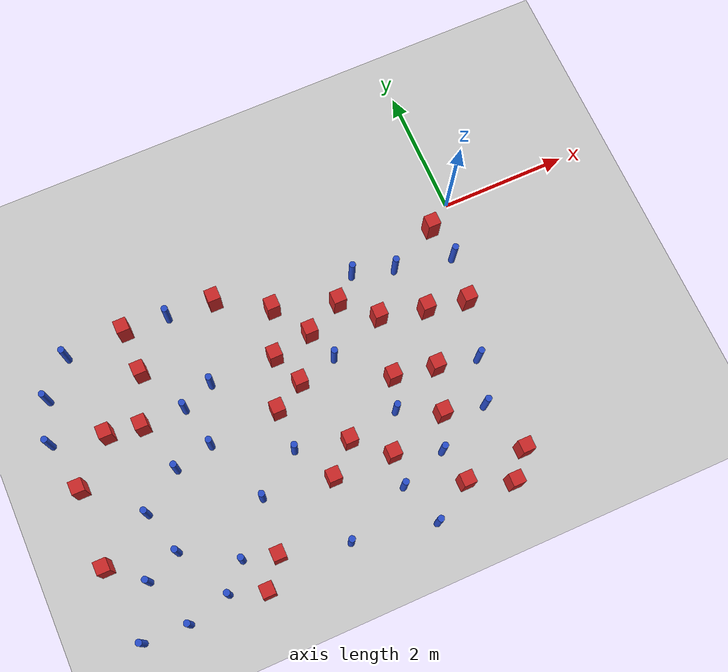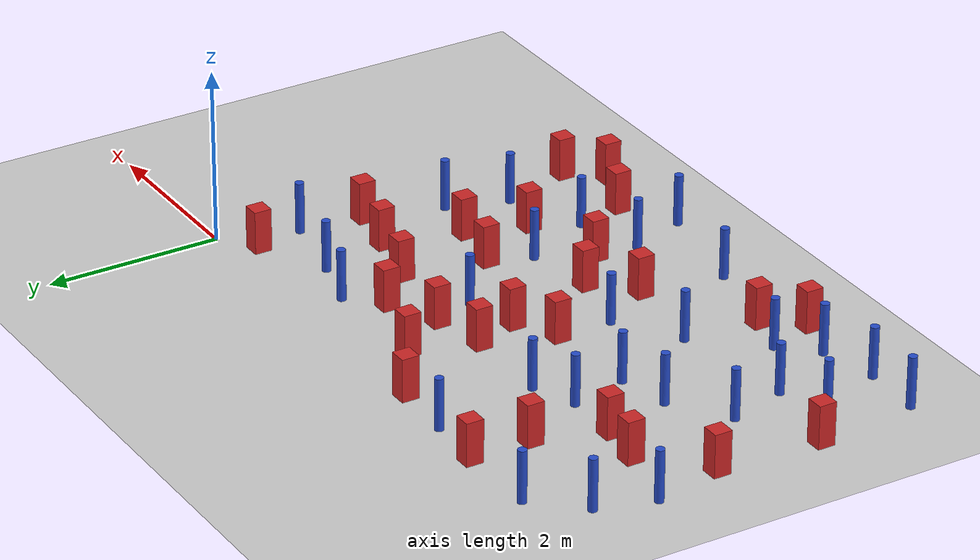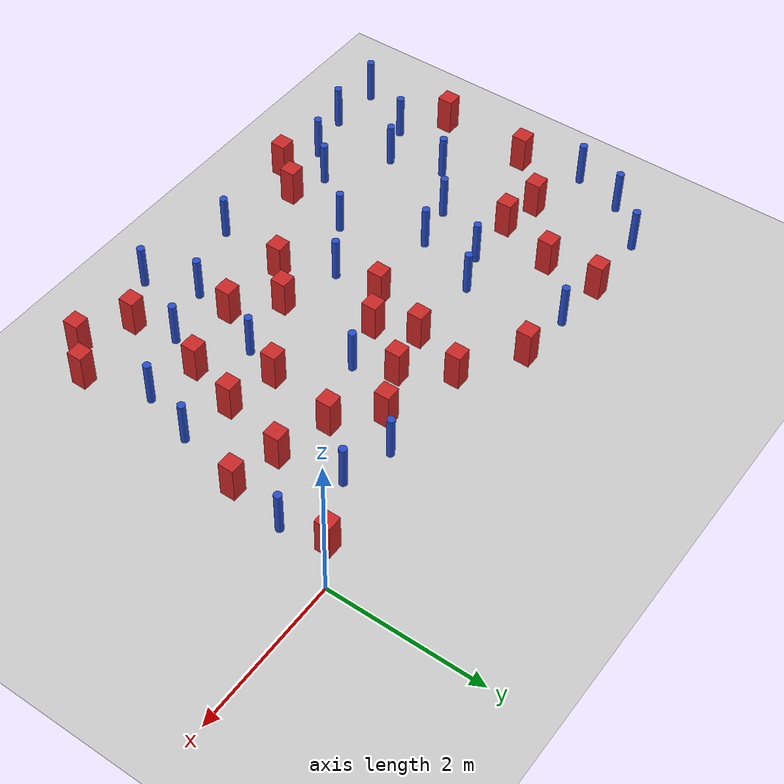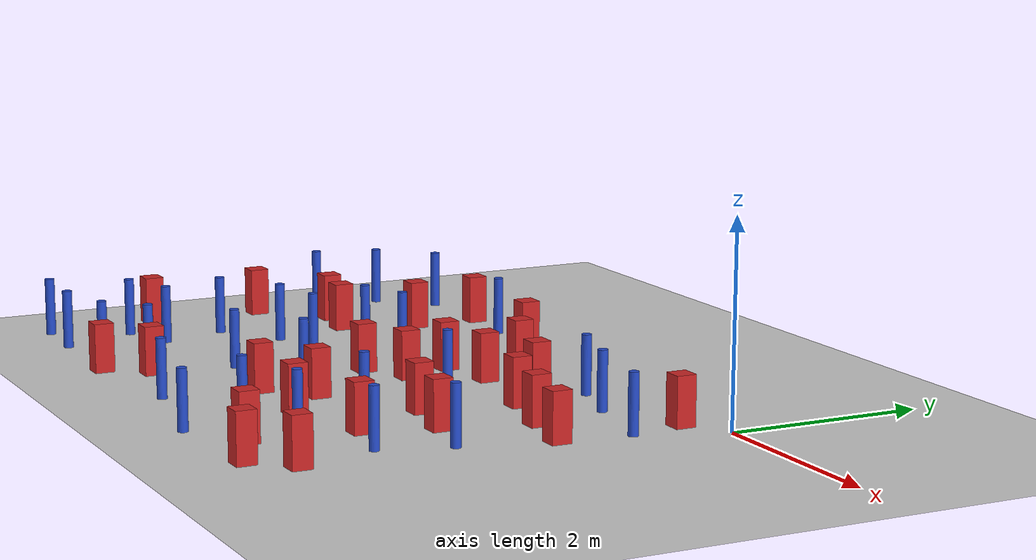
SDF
<sdf version="1.6">
 <world name="default">
  <model name="ground_plane">
   <static>1</static>
   <link name="link">
    <collision name="collision">
     <geometry><plane><normal>0 0 1</normal><size>100 100</size></plane></geometry>
     <surface><friction><ode><mu>100</mu><mu2>50</mu2></ode></friction></surface>
    </collision>
    <visual name="visual">
     <cast_shadows>0</cast_shadows>
     <geometry><plane><normal>0 0 1</normal><size>100 100</size></plane></geometry>
     <material>
      <ambient>1.0 1.0 1.0 1.0</ambient>
      <diffuse>0.8 0.8 0.8 1.0</diffuse>
      <specular>0.01 0.01 0.01 1.000000</specular>
     </material>
    </visual>
   </link>
  </model>
  <model name="square_post_obstacle12">
   <static>true</static>
   <pose>-3.24968776306 -1.7492134352 1.91545236811e-07 -7.35059704564e-06 1.12565212e-07 2.39332434364e-05</pose>
   <link name="link">
    <pose>0 0 0.25 0 -0 0</pose>
    <inertial>
     <mass>100</mass>
     <inertia>
      <ixx>0.166667</ixx>
      <ixy>0</ixy>
      <ixz>0</ixz>
      <iyy>0.166667</iyy>
      <iyz>0</iyz>
      <izz>0.166667</izz>
     </inertia>
    </inertial>
    <collision name="collision"><geometry><box><size>.2 .2 .5</size></box></geometry></collision>
    <visual name="visual">
     <geometry><box><size>.2 .2 .5</size></box></geometry>
     <material>
      <script><name>Gazebo/Red</name><uri>file://media/materials/scripts/gazebo.material</uri></script>
     </material>
    </visual>
   </link>
  </model>
  <model name="square_post_obstacle21">
   <static>true</static>
   <pose>-2.22867674971 -0.830069548828 1.91545236811e-07 -7.35059704564e-06 1.12565212e-07 2.39332434364e-05</pose>
   <link name="link">
    <pose>0 0 0.25 0 -0 0</pose>
    <inertial>
     <mass>100</mass>
     <inertia>
      <ixx>0.166667</ixx>
      <ixy>0</ixy>
      <ixz>0</ixz>
      <iyy>0.166667</iyy>
      <iyz>0</iyz>
      <izz>0.166667</izz>
     </inertia>
    </inertial>
    <collision name="collision"><geometry><box><size>.2 .2 .5</size></box></geometry></collision>
    <visual name="visual">
     <geometry><box><size>.2 .2 .5</size></box></geometry>
     <material>
      <script><name>Gazebo/Red</name><uri>file://media/materials/scripts/gazebo.material</uri></script>
     </material>
    </visual>
   </link>
  </model>
  <model name="pole_obstacle16">
   <static>true</static>
   <pose>-2.48492322059 -3.77934961691 7.38925637345e-09 -8.47170692798e-08 1.24976764939e-08 -1.74513093025e-07</pose>
   <link name="link">
    <pose>0 0 0.3 0 -0 0</pose>
    <inertial>
     <mass>1</mass>
     <inertia><ixx>0.145833</ixx><ixy>0</ixy><ixz>0</ixz><iyy>0.145833</iyy><iyz>0</iyz><izz>0.125</izz></inertia>
    </inertial>
    <collision name="collision">
     <geometry><cylinder><radius>0.05</radius><length>.6</length></cylinder></geometry>
    </collision>
    <visual name="visual">
     <geometry><cylinder><radius>0.05</radius><length>.6</length></cylinder></geometry>
     <material>
      <script><name>Gazebo/Blue</name><uri>file://media/materials/scripts/gazebo.material</uri></script>
     </material>
    </visual>
   </link>
  </model>
  <model name="square_post_obstacle23">
   <static>true</static>
   <pose>-1.29232454125 -2.33395352667 1.91545236811e-07 -7.35059704564e-06 1.12565212e-07 2.39332434364e-05</pose>
   <link name="link">
    <pose>0 0 0.25 0 -0 0</pose>
    <inertial>
     <mass>100</mass>
     <inertia>
      <ixx>0.166667</ixx>
      <ixy>0</ixy>
      <ixz>0</ixz>
      <iyy>0.166667</iyy>
      <iyz>0</iyz>
      <izz>0.166667</izz>
     </inertia>
    </inertial>
    <collision name="collision"><geometry><box><size>.2 .2 .5</size></box></geometry></collision>
    <visual name="visual">
     <geometry><box><size>.2 .2 .5</size></box></geometry>
     <material>
      <script><name>Gazebo/Red</name><uri>file://media/materials/scripts/gazebo.material</uri></script>
     </material>
    </visual>
   </link>
  </model>
  <model name="square_post_obstacle25">
   <static>true</static>
   <pose>-3.43950755775 -1.2305479218 1.91545236811e-07 -7.35059704564e-06 1.12565212e-07 2.39332434364e-05</pose>
   <link name="link">
    <pose>0 0 0.25 0 -0 0</pose>
    <inertial>
     <mass>100</mass>
     <inertia>
      <ixx>0.166667</ixx>
      <ixy>0</ixy>
      <ixz>0</ixz>
      <iyy>0.166667</iyy>
      <iyz>0</iyz>
      <izz>0.166667</izz>
     </inertia>
    </inertial>
    <collision name="collision"><geometry><box><size>.2 .2 .5</size></box></geometry></collision>
    <visual name="visual">
     <geometry><box><size>.2 .2 .5</size></box></geometry>
     <material>
      <script><name>Gazebo/Red</name><uri>file://media/materials/scripts/gazebo.material</uri></script>
     </material>
    </visual>
   </link>
  </model>
  <model name="square_post_obstacle28">
   <static>true</static>
   <pose>-4.53590641707 -3.95308508538 1.91545236811e-07 -7.35059704564e-06 1.12565212e-07 2.39332434364e-05</pose>
   <link name="link">
    <pose>0 0 0.25 0 -0 0</pose>
    <inertial>
     <mass>100</mass>
     <inertia>
      <ixx>0.166667</ixx>
      <ixy>0</ixy>
      <ixz>0</ixz>
      <iyy>0.166667</iyy>
      <iyz>0</iyz>
      <izz>0.166667</izz>
     </inertia>
    </inertial>
    <collision name="collision"><geometry><box><size>.2 .2 .5</size></box></geometry></collision>
    <visual name="visual">
     <geometry><box><size>.2 .2 .5</size></box></geometry>
     <material>
      <script><name>Gazebo/Red</name><uri>file://media/materials/scripts/gazebo.material</uri></script>
     </material>
    </visual>
   </link>
  </model>
  <model name="square_post_obstacle29">
   <static>true</static>
   <pose>-0.419268702525 -1.57879179032 1.91545236811e-07 -7.35059704564e-06 1.12565212e-07 2.39332434364e-05</pose>
   <link name="link">
    <pose>0 0 0.25 0 -0 0</pose>
    <inertial>
     <mass>100</mass>
     <inertia>
      <ixx>0.166667</ixx>
      <ixy>0</ixy>
      <ixz>0</ixz>
      <iyy>0.166667</iyy>
      <iyz>0</iyz>
      <izz>0.166667</izz>
     </inertia>
    </inertial>
    <collision name="collision"><geometry><box><size>.2 .2 .5</size></box></geometry></collision>
    <visual name="visual">
     <geometry><box><size>.2 .2 .5</size></box></geometry>
     <material>
      <script><name>Gazebo/Red</name><uri>file://media/materials/scripts/gazebo.material</uri></script>
     </material>
    </visual>
   </link>
  </model>
  <model name="pole_obstacle24">
   <static>true</static>
   <pose>-0.882646282621 -3.15868062069 7.38925637345e-09 -8.47170692799e-08 1.2497676509e-08 -1.74513093016e-07</pose>
   <link name="link">
    <pose>0 0 0.3 0 -0 0</pose>
    <inertial>
     <mass>1</mass>
     <inertia><ixx>0.145833</ixx><ixy>0</ixy><ixz>0</ixz><iyy>0.145833</iyy><iyz>0</iyz><izz>0.125</izz></inertia>
    </inertial>
    <collision name="collision">
     <geometry><cylinder><radius>0.05</radius><length>.6</length></cylinder></geometry>
    </collision>
    <visual name="visual">
     <geometry><cylinder><radius>0.05</radius><length>.6</length></cylinder></geometry>
     <material>
      <script><name>Gazebo/Blue</name><uri>file://media/materials/scripts/gazebo.material</uri></script>
     </material>
    </visual>
   </link>
  </model>
  <model name="pole_obstacle27">
   <static>true</static>
   <pose>-3.51186003763 -4.2067492809 7.38925637345e-09 -8.47170692798e-08 1.24976765033e-08 -1.74513093019e-07</pose>
   <link name="link">
    <pose>0 0 0.3 0 -0 0</pose>
    <inertial>
     <mass>1</mass>
     <inertia><ixx>0.145833</ixx><ixy>0</ixy><ixz>0</ixz><iyy>0.145833</iyy><iyz>0</iyz><izz>0.125</izz></inertia>
    </inertial>
    <collision name="collision">
     <geometry><cylinder><radius>0.05</radius><length>.6</length></cylinder></geometry>
    </collision>
    <visual name="visual">
     <geometry><cylinder><radius>0.05</radius><length>.6</length></cylinder></geometry>
     <material>
      <script><name>Gazebo/Blue</name><uri>file://media/materials/scripts/gazebo.material</uri></script>
     </material>
    </visual>
   </link>
  </model>
  <model name="square_post_obstacle32">
   <static>true</static>
   <pose>-1.50820514851 -3.01969444525 1.91545236811e-07 -7.35059704564e-06 1.12565212e-07 2.39332434364e-05</pose>
   <link name="link">
    <pose>0 0 0.25 0 -0 0</pose>
    <inertial>
     <mass>100</mass>
     <inertia>
      <ixx>0.166667</ixx>
      <ixy>0</ixy>
      <ixz>0</ixz>
      <iyy>0.166667</iyy>
      <iyz>0</iyz>
      <izz>0.166667</izz>
     </inertia>
    </inertial>
    <collision name="collision"><geometry><box><size>.2 .2 .5</size></box></geometry></collision>
    <visual name="visual">
     <geometry><box><size>.2 .2 .5</size></box></geometry>
     <material>
      <script><name>Gazebo/Red</name><uri>file://media/materials/scripts/gazebo.material</uri></script>
     </material>
    </visual>
   </link>
  </model>
  <model name="square_post_obstacle36">
   <static>true</static>
   <pose>-5.36356788822 0.0402801164246 1.91545236811e-07 -7.35059704564e-06 1.12565212e-07 2.39332434364e-05</pose>
   <link name="link">
    <pose>0 0 0.25 0 -0 0</pose>
    <inertial>
     <mass>100</mass>
     <inertia>
      <ixx>0.166667</ixx>
      <ixy>0</ixy>
      <ixz>0</ixz>
      <iyy>0.166667</iyy>
      <iyz>0</iyz>
      <izz>0.166667</izz>
     </inertia>
    </inertial>
    <collision name="collision"><geometry><box><size>.2 .2 .5</size></box></geometry></collision>
    <visual name="visual">
     <geometry><box><size>.2 .2 .5</size></box></geometry>
     <material>
      <script><name>Gazebo/Red</name><uri>file://media/materials/scripts/gazebo.material</uri></script>
     </material>
    </visual>
   </link>
  </model>
  <model name="square_post_obstacle37">
   <static>true</static>
   <pose>-3.36944202297 -3.25325025212 1.91545236811e-07 -7.35059704564e-06 1.12565212e-07 2.39332434364e-05</pose>
   <link name="link">
    <pose>0 0 0.25 0 -0 0</pose>
    <inertial>
     <mass>100</mass>
     <inertia>
      <ixx>0.166667</ixx>
      <ixy>0</ixy>
      <ixz>0</ixz>
      <iyy>0.166667</iyy>
      <iyz>0</iyz>
      <izz>0.166667</izz>
     </inertia>
    </inertial>
    <collision name="collision"><geometry><box><size>.2 .2 .5</size></box></geometry></collision>
    <visual name="visual">
     <geometry><box><size>.2 .2 .5</size></box></geometry>
     <material>
      <script><name>Gazebo/Red</name><uri>file://media/materials/scripts/gazebo.material</uri></script>
     </material>
    </visual>
   </link>
  </model>
  <model name="pole_obstacle37">
   <static>true</static>
   <pose>-6.05129479871 -4.34345633905 7.38925637345e-09 -8.47170692796e-08 1.24976764786e-08 -1.74513093032e-07</pose>
   <link name="link">
    <pose>0 0 0.3 0 -0 0</pose>
    <inertial>
     <mass>1</mass>
     <inertia><ixx>0.145833</ixx><ixy>0</ixy><ixz>0</ixz><iyy>0.145833</iyy><iyz>0</iyz><izz>0.125</izz></inertia>
    </inertial>
    <collision name="collision">
     <geometry><cylinder><radius>0.05</radius><length>.6</length></cylinder></geometry>
    </collision>
    <visual name="visual">
     <geometry><cylinder><radius>0.05</radius><length>.6</length></cylinder></geometry>
     <material>
      <script><name>Gazebo/Blue</name><uri>file://media/materials/scripts/gazebo.material</uri></script>
     </material>
    </visual>
   </link>
  </model>
  <model name="square_post_obstacle42">
   <static>true</static>
   <pose>-5.63996108967 -1.42711764824 1.91545236811e-07 -7.35059704564e-06 1.12565212e-07 2.39332434364e-05</pose>
   <link name="link">
    <pose>0 0 0.25 0 -0 0</pose>
    <inertial>
     <mass>100</mass>
     <inertia>
      <ixx>0.166667</ixx>
      <ixy>0</ixy>
      <ixz>0</ixz>
      <iyy>0.166667</iyy>
      <iyz>0</iyz>
      <izz>0.166667</izz>
     </inertia>
    </inertial>
    <collision name="collision"><geometry><box><size>.2 .2 .5</size></box></geometry></collision>
    <visual name="visual">
     <geometry><box><size>.2 .2 .5</size></box></geometry>
     <material>
      <script><name>Gazebo/Red</name><uri>file://media/materials/scripts/gazebo.material</uri></script>
     </material>
    </visual>
   </link>
  </model>
  <model name="pole_obstacle49">
   <static>true</static>
   <pose>-5.83834952312 -3.33930949637 7.38925637345e-09 -8.47170692798e-08 1.24976764937e-08 -1.74513093023e-07</pose>
   <link name="link">
    <pose>0 0 0.3 0 -0 0</pose>
    <inertial>
     <mass>1</mass>
     <inertia><ixx>0.145833</ixx><ixy>0</ixy><ixz>0</ixz><iyy>0.145833</iyy><iyz>0</iyz><izz>0.125</izz></inertia>
    </inertial>
    <collision name="collision">
     <geometry><cylinder><radius>0.05</radius><length>.6</length></cylinder></geometry>
    </collision>
    <visual name="visual">
     <geometry><cylinder><radius>0.05</radius><length>.6</length></cylinder></geometry>
     <material>
      <script><name>Gazebo/Blue</name><uri>file://media/materials/scripts/gazebo.material</uri></script>
     </material>
    </visual>
   </link>
  </model>
  <model name="square_post_obstacle53">
   <static>true</static>
   <pose>-1.04508163215 -1.45738950276 1.91545236811e-07 -7.35059704564e-06 1.12565212e-07 2.39332434364e-05</pose>
   <link name="link">
    <pose>0 0 0.25 0 -0 0</pose>
    <inertial>
     <mass>100</mass>
     <inertia>
      <ixx>0.166667</ixx>
      <ixy>0</ixy>
      <ixz>0</ixz>
      <iyy>0.166667</iyy>
      <iyz>0</iyz>
      <izz>0.166667</izz>
     </inertia>
    </inertial>
    <collision name="collision"><geometry><box><size>.2 .2 .5</size></box></geometry></collision>
    <visual name="visual">
     <geometry><box><size>.2 .2 .5</size></box></geometry>
     <material>
      <script><name>Gazebo/Red</name><uri>file://media/materials/scripts/gazebo.material</uri></script>
     </material>
    </visual>
   </link>
  </model>
  <model name="square_post_obstacle55">
   <static>true</static>
   <pose>-6.86920981232 -3.13876320647 1.91545236811e-07 -7.35059704564e-06 1.12565212e-07 2.39332434364e-05</pose>
   <link name="link">
    <pose>0 0 0.25 0 -0 0</pose>
    <inertial>
     <mass>100</mass>
     <inertia>
      <ixx>0.166667</ixx>
      <ixy>0</ixy>
      <ixz>0</ixz>
      <iyy>0.166667</iyy>
      <iyz>0</iyz>
      <izz>0.166667</izz>
     </inertia>
    </inertial>
    <collision name="collision"><geometry><box><size>.2 .2 .5</size></box></geometry></collision>
    <visual name="visual">
     <geometry><box><size>.2 .2 .5</size></box></geometry>
     <material>
      <script><name>Gazebo/Red</name><uri>file://media/materials/scripts/gazebo.material</uri></script>
     </material>
    </visual>
   </link>
  </model>
  <model name="pole_obstacle56">
   <static>true</static>
   <pose>-3.72729289448 -2.65106320883 7.38925637345e-09 -8.471706928e-08 1.24976765098e-08 -1.74513093016e-07</pose>
   <link name="link">
    <pose>0 0 0.3 0 -0 0</pose>
    <inertial>
     <mass>1</mass>
     <inertia><ixx>0.145833</ixx><ixy>0</ixy><ixz>0</ixz><iyy>0.145833</iyy><iyz>0</iyz><izz>0.125</izz></inertia>
    </inertial>
    <collision name="collision">
     <geometry><cylinder><radius>0.05</radius><length>.6</length></cylinder></geometry>
    </collision>
    <visual name="visual">
     <geometry><cylinder><radius>0.05</radius><length>.6</length></cylinder></geometry>
     <material>
      <script><name>Gazebo/Blue</name><uri>file://media/materials/scripts/gazebo.material</uri></script>
     </material>
    </visual>
   </link>
  </model>
  <model name="square_post_obstacle61">
   <static>true</static>
   <pose>-1.94892473949 -2.21578602928 1.91545236811e-07 -7.35059704564e-06 1.12565212e-07 2.39332434364e-05</pose>
   <link name="link">
    <pose>0 0 0.25 0 -0 0</pose>
    <inertial>
     <mass>100</mass>
     <inertia>
      <ixx>0.166667</ixx>
      <ixy>0</ixy>
      <ixz>0</ixz>
      <iyy>0.166667</iyy>
      <iyz>0</iyz>
      <izz>0.166667</izz>
     </inertia>
    </inertial>
    <collision name="collision"><geometry><box><size>.2 .2 .5</size></box></geometry></collision>
    <visual name="visual">
     <geometry><box><size>.2 .2 .5</size></box></geometry>
     <material>
      <script><name>Gazebo/Red</name><uri>file://media/materials/scripts/gazebo.material</uri></script>
     </material>
    </visual>
   </link>
  </model>
  <model name="square_post_obstacle64">
   <static>true</static>
   <pose>-4.86951328698 -4.36073724469 1.91545236811e-07 -7.35059704564e-06 1.12565212e-07 2.39332434364e-05</pose>
   <link name="link">
    <pose>0 0 0.25 0 -0 0</pose>
    <inertial>
     <mass>100</mass>
     <inertia>
      <ixx>0.166667</ixx>
      <ixy>0</ixy>
      <ixz>0</ixz>
      <iyy>0.166667</iyy>
      <iyz>0</iyz>
      <izz>0.166667</izz>
     </inertia>
    </inertial>
    <collision name="collision"><geometry><box><size>.2 .2 .5</size></box></geometry></collision>
    <visual name="visual">
     <geometry><box><size>.2 .2 .5</size></box></geometry>
     <material>
      <script><name>Gazebo/Red</name><uri>file://media/materials/scripts/gazebo.material</uri></script>
     </material>
    </visual>
   </link>
  </model>
  <model name="square_post_obstacle73">
   <static>true</static>
   <pose>-3.94437708918 -0.0543392792899 1.91545236811e-07 -7.35059704564e-06 1.12565212e-07 2.39332434364e-05</pose>
   <link name="link">
    <pose>0 0 0.25 0 -0 0</pose>
    <inertial>
     <mass>100</mass>
     <inertia>
      <ixx>0.166667</ixx>
      <ixy>0</ixy>
      <ixz>0</ixz>
      <iyy>0.166667</iyy>
      <iyz>0</iyz>
      <izz>0.166667</izz>
     </inertia>
    </inertial>
    <collision name="collision"><geometry><box><size>.2 .2 .5</size></box></geometry></collision>
    <visual name="visual">
     <geometry><box><size>.2 .2 .5</size></box></geometry>
     <material>
      <script><name>Gazebo/Red</name><uri>file://media/materials/scripts/gazebo.material</uri></script>
     </material>
    </visual>
   </link>
  </model>
  <model name="pole_obstacle82">
   <static>true</static>
   <pose>-6.29581698234 0.00849381375424 7.38925637345e-09 -8.47170692801e-08 1.24976765199e-08 -1.74513093011e-07</pose>
   <link name="link">
    <pose>0 0 0.3 0 -0 0</pose>
    <inertial>
     <mass>1</mass>
     <inertia><ixx>0.145833</ixx><ixy>0</ixy><ixz>0</ixz><iyy>0.145833</iyy><iyz>0</iyz><izz>0.125</izz></inertia>
    </inertial>
    <collision name="collision">
     <geometry><cylinder><radius>0.05</radius><length>.6</length></cylinder></geometry>
    </collision>
    <visual name="visual">
     <geometry><cylinder><radius>0.05</radius><length>.6</length></cylinder></geometry>
     <material>
      <script><name>Gazebo/Blue</name><uri>file://media/materials/scripts/gazebo.material</uri></script>
     </material>
    </visual>
   </link>
  </model>
  <model name="pole_obstacle85">
   <static>true</static>
   <pose>-6.03846720778 -2.66188068287 7.38925637345e-09 -8.47170692798e-08 1.24976764937e-08 -1.74513093023e-07</pose>
   <link name="link">
    <pose>0 0 0.3 0 -0 0</pose>
    <inertial>
     <mass>1</mass>
     <inertia><ixx>0.145833</ixx><ixy>0</ixy><ixz>0</ixz><iyy>0.145833</iyy><iyz>0</iyz><izz>0.125</izz></inertia>
    </inertial>
    <collision name="collision">
     <geometry><cylinder><radius>0.05</radius><length>.6</length></cylinder></geometry>
    </collision>
    <visual name="visual">
     <geometry><cylinder><radius>0.05</radius><length>.6</length></cylinder></geometry>
     <material>
      <script><name>Gazebo/Blue</name><uri>file://media/materials/scripts/gazebo.material</uri></script>
     </material>
    </visual>
   </link>
  </model>
  <model name="pole_obstacle88">
   <static>true</static>
   <pose>-1.21165166252 -0.676299106454 7.38925637345e-09 -8.47170692799e-08 1.24976765075e-08 -1.74513093017e-07</pose>
   <link name="link">
    <pose>0 0 0.3 0 -0 0</pose>
    <inertial>
     <mass>1</mass>
     <inertia><ixx>0.145833</ixx><ixy>0</ixy><ixz>0</ixz><iyy>0.145833</iyy><iyz>0</iyz><izz>0.125</izz></inertia>
    </inertial>
    <collision name="collision">
     <geometry><cylinder><radius>0.05</radius><length>.6</length></cylinder></geometry>
    </collision>
    <visual name="visual">
     <geometry><cylinder><radius>0.05</radius><length>.6</length></cylinder></geometry>
     <material>
      <script><name>Gazebo/Blue</name><uri>file://media/materials/scripts/gazebo.material</uri></script>
     </material>
    </visual>
   </link>
  </model>
  <model name="pole_obstacle93">
   <static>true</static>
   <pose>-2.25051731656 -4.44953102349 7.38925637345e-09 -8.47170692798e-08 1.24976765033e-08 -1.74513093019e-07</pose>
   <link name="link">
    <pose>0 0 0.3 0 -0 0</pose>
    <inertial>
     <mass>1</mass>
     <inertia><ixx>0.145833</ixx><ixy>0</ixy><ixz>0</ixz><iyy>0.145833</iyy><iyz>0</iyz><izz>0.125</izz></inertia>
    </inertial>
    <collision name="collision">
     <geometry><cylinder><radius>0.05</radius><length>.6</length></cylinder></geometry>
    </collision>
    <visual name="visual">
     <geometry><cylinder><radius>0.05</radius><length>.6</length></cylinder></geometry>
     <material>
      <script><name>Gazebo/Blue</name><uri>file://media/materials/scripts/gazebo.material</uri></script>
     </material>
    </visual>
   </link>
  </model>
  <model name="square_post_obstacle87">
   <static>true</static>
   <pose>-5.37032522002 -0.660540714982 1.91545236811e-07 -7.35059704564e-06 1.12565212e-07 2.39332434364e-05</pose>
   <link name="link">
    <pose>0 0 0.25 0 -0 0</pose>
    <inertial>
     <mass>100</mass>
     <inertia>
      <ixx>0.166667</ixx>
      <ixy>0</ixy>
      <ixz>0</ixz>
      <iyy>0.166667</iyy>
      <iyz>0</iyz>
      <izz>0.166667</izz>
     </inertia>
    </inertial>
    <collision name="collision"><geometry><box><size>.2 .2 .5</size></box></geometry></collision>
    <visual name="visual">
     <geometry><box><size>.2 .2 .5</size></box></geometry>
     <material>
      <script><name>Gazebo/Red</name><uri>file://media/materials/scripts/gazebo.material</uri></script>
     </material>
    </visual>
   </link>
  </model>
  <model name="pole_obstacle99">
   <static>true</static>
   <pose>-4.82120025212 -2.09259527037 7.38925637345e-09 -8.47170692798e-08 1.24976764937e-08 -1.74513093023e-07</pose>
   <link name="link">
    <pose>0 0 0.3 0 -0 0</pose>
    <inertial>
     <mass>1</mass>
     <inertia><ixx>0.145833</ixx><ixy>0</ixy><ixz>0</ixz><iyy>0.145833</iyy><iyz>0</iyz><izz>0.125</izz></inertia>
    </inertial>
    <collision name="collision">
     <geometry><cylinder><radius>0.05</radius><length>.6</length></cylinder></geometry>
    </collision>
    <visual name="visual">
     <geometry><cylinder><radius>0.05</radius><length>.6</length></cylinder></geometry>
     <material>
      <script><name>Gazebo/Blue</name><uri>file://media/materials/scripts/gazebo.material</uri></script>
     </material>
    </visual>
   </link>
  </model>
  <model name="square_post_obstacle89">
   <static>true</static>
   <pose>-0.423163816904 -0.293715546141 1.91545236811e-07 -7.35059704564e-06 1.12565212e-07 2.39332434364e-05</pose>
   <link name="link">
    <pose>0 0 0.25 0 -0 0</pose>
    <inertial>
     <mass>100</mass>
     <inertia>
      <ixx>0.166667</ixx>
      <ixy>0</ixy>
      <ixz>0</ixz>
      <iyy>0.166667</iyy>
      <iyz>0</iyz>
      <izz>0.166667</izz>
     </inertia>
    </inertial>
    <collision name="collision"><geometry><box><size>.2 .2 .5</size></box></geometry></collision>
    <visual name="visual">
     <geometry><box><size>.2 .2 .5</size></box></geometry>
     <material>
      <script><name>Gazebo/Red</name><uri>file://media/materials/scripts/gazebo.material</uri></script>
     </material>
    </visual>
   </link>
  </model>
  <model name="pole_obstacle102">
   <static>true</static>
   <pose>-0.659479698338 -2.46823164954 7.38925637345e-09 -8.47170692799e-08 1.2497676509e-08 -1.74513093016e-07</pose>
   <link name="link">
    <pose>0 0 0.3 0 -0 0</pose>
    <inertial>
     <mass>1</mass>
     <inertia><ixx>0.145833</ixx><ixy>0</ixy><ixz>0</ixz><iyy>0.145833</iyy><iyz>0</iyz><izz>0.125</izz></inertia>
    </inertial>
    <collision name="collision">
     <geometry><cylinder><radius>0.05</radius><length>.6</length></cylinder></geometry>
    </collision>
    <visual name="visual">
     <geometry><cylinder><radius>0.05</radius><length>.6</length></cylinder></geometry>
     <material>
      <script><name>Gazebo/Blue</name><uri>file://media/materials/scripts/gazebo.material</uri></script>
     </material>
    </visual>
   </link>
  </model>
  <model name="square_post_obstacle91">
   <static>true</static>
   <pose>-2.93082645518 -2.83962400763 1.91545236811e-07 -7.35059704564e-06 1.12565212e-07 2.39332434364e-05</pose>
   <link name="link">
    <pose>0 0 0.25 0 -0 0</pose>
    <inertial>
     <mass>100</mass>
     <inertia>
      <ixx>0.166667</ixx>
      <ixy>0</ixy>
      <ixz>0</ixz>
      <iyy>0.166667</iyy>
      <iyz>0</iyz>
      <izz>0.166667</izz>
     </inertia>
    </inertial>
    <collision name="collision"><geometry><box><size>.2 .2 .5</size></box></geometry></collision>
    <visual name="visual">
     <geometry><box><size>.2 .2 .5</size></box></geometry>
     <material>
      <script><name>Gazebo/Red</name><uri>file://media/materials/scripts/gazebo.material</uri></script>
     </material>
    </visual>
   </link>
  </model>
  <model name="square_post_obstacle96">
   <static>true</static>
   <pose>-1.75631719366 -1.28450470332 1.91545236811e-07 -7.35059704564e-06 1.12565212e-07 2.39332434364e-05</pose>
   <link name="link">
    <pose>0 0 0.25 0 -0 0</pose>
    <inertial>
     <mass>100</mass>
     <inertia>
      <ixx>0.166667</ixx>
      <ixy>0</ixy>
      <ixz>0</ixz>
      <iyy>0.166667</iyy>
      <iyz>0</iyz>
      <izz>0.166667</izz>
     </inertia>
    </inertial>
    <collision name="collision"><geometry><box><size>.2 .2 .5</size></box></geometry></collision>
    <visual name="visual">
     <geometry><box><size>.2 .2 .5</size></box></geometry>
     <material>
      <script><name>Gazebo/Red</name><uri>file://media/materials/scripts/gazebo.material</uri></script>
     </material>
    </visual>
   </link>
  </model>
  <model name="pole_obstacle110">
   <static>true</static>
   <pose>-5.03612855284 -3.81266593896 7.38925637345e-09 -8.47170692798e-08 1.24976764937e-08 -1.74513093023e-07</pose>
   <link name="link">
    <pose>0 0 0.3 0 -0 0</pose>
    <inertial>
     <mass>1</mass>
     <inertia><ixx>0.145833</ixx><ixy>0</ixy><ixz>0</ixz><iyy>0.145833</iyy><iyz>0</iyz><izz>0.125</izz></inertia>
    </inertial>
    <collision name="collision">
     <geometry><cylinder><radius>0.05</radius><length>.6</length></cylinder></geometry>
    </collision>
    <visual name="visual">
     <geometry><cylinder><radius>0.05</radius><length>.6</length></cylinder></geometry>
     <material>
      <script><name>Gazebo/Blue</name><uri>file://media/materials/scripts/gazebo.material</uri></script>
     </material>
    </visual>
   </link>
  </model>
  <model name="pole_obstacle116">
   <static>true</static>
   <pose>-0.313876072144 -0.857057704929 7.38925637345e-09 -8.47170692799e-08 1.24976765033e-08 -1.74513093019e-07</pose>
   <link name="link">
    <pose>0 0 0.3 0 -0 0</pose>
    <inertial>
     <mass>1</mass>
     <inertia><ixx>0.145833</ixx><ixy>0</ixy><ixz>0</ixz><iyy>0.145833</iyy><iyz>0</iyz><izz>0.125</izz></inertia>
    </inertial>
    <collision name="collision">
     <geometry><cylinder><radius>0.05</radius><length>.6</length></cylinder></geometry>
    </collision>
    <visual name="visual">
     <geometry><cylinder><radius>0.05</radius><length>.6</length></cylinder></geometry>
     <material>
      <script><name>Gazebo/Blue</name><uri>file://media/materials/scripts/gazebo.material</uri></script>
     </material>
    </visual>
   </link>
  </model>
  <model name="square_post_obstacle104">
   <static>true</static>
   <pose>-6.16385734205 -1.33830157586 1.91545236811e-07 -7.35059704564e-06 1.12565212e-07 2.39332434364e-05</pose>
   <link name="link">
    <pose>0 0 0.25 0 -0 0</pose>
    <inertial>
     <mass>100</mass>
     <inertia>
      <ixx>0.166667</ixx>
      <ixy>0</ixy>
      <ixz>0</ixz>
      <iyy>0.166667</iyy>
      <iyz>0</iyz>
      <izz>0.166667</izz>
     </inertia>
    </inertial>
    <collision name="collision"><geometry><box><size>.2 .2 .5</size></box></geometry></collision>
    <visual name="visual">
     <geometry><box><size>.2 .2 .5</size></box></geometry>
     <material>
      <script><name>Gazebo/Red</name><uri>file://media/materials/scripts/gazebo.material</uri></script>
     </material>
    </visual>
   </link>
  </model>
  <model name="square_post_obstacle109">
   <static>true</static>
   <pose>-0.992272449934 -4.35313603677 1.91545236811e-07 -7.35059704564e-06 1.12565212e-07 2.39332434364e-05</pose>
   <link name="link">
    <pose>0 0 0.25 0 -0 0</pose>
    <inertial>
     <mass>100</mass>
     <inertia>
      <ixx>0.166667</ixx>
      <ixy>0</ixy>
      <ixz>0</ixz>
      <iyy>0.166667</iyy>
      <iyz>0</iyz>
      <izz>0.166667</izz>
     </inertia>
    </inertial>
    <collision name="collision"><geometry><box><size>.2 .2 .5</size></box></geometry></collision>
    <visual name="visual">
     <geometry><box><size>.2 .2 .5</size></box></geometry>
     <material>
      <script><name>Gazebo/Red</name><uri>file://media/materials/scripts/gazebo.material</uri></script>
     </material>
    </visual>
   </link>
  </model>
  <model name="square_post_obstacle124">
   <static>true</static>
   <pose>-2.81209595466 -1.09865529324 1.91545236811e-07 -7.35059704564e-06 1.12565212e-07 2.39332434364e-05</pose>
   <link name="link">
    <pose>0 0 0.25 0 -0 0</pose>
    <inertial>
     <mass>100</mass>
     <inertia>
      <ixx>0.166667</ixx>
      <ixy>0</ixy>
      <ixz>0</ixz>
      <iyy>0.166667</iyy>
      <iyz>0</iyz>
      <izz>0.166667</izz>
     </inertia>
    </inertial>
    <collision name="collision"><geometry><box><size>.2 .2 .5</size></box></geometry></collision>
    <visual name="visual">
     <geometry><box><size>.2 .2 .5</size></box></geometry>
     <material>
      <script><name>Gazebo/Red</name><uri>file://media/materials/scripts/gazebo.material</uri></script>
     </material>
    </visual>
   </link>
  </model>
  <model name="square_post_obstacle129">
   <static>true</static>
   <pose>-3.72181849511 -2.00651474116 1.91545236811e-07 -7.35059704564e-06 1.12565212e-07 2.39332434364e-05</pose>
   <link name="link">
    <pose>0 0 0.25 0 -0 0</pose>
    <inertial>
     <mass>100</mass>
     <inertia>
      <ixx>0.166667</ixx>
      <ixy>0</ixy>
      <ixz>0</ixz>
      <iyy>0.166667</iyy>
      <iyz>0</iyz>
      <izz>0.166667</izz>
     </inertia>
    </inertial>
    <collision name="collision"><geometry><box><size>.2 .2 .5</size></box></geometry></collision>
    <visual name="visual">
     <geometry><box><size>.2 .2 .5</size></box></geometry>
     <material>
      <script><name>Gazebo/Red</name><uri>file://media/materials/scripts/gazebo.material</uri></script>
     </material>
    </visual>
   </link>
  </model>
  <model name="pole_obstacle143">
   <static>true</static>
   <pose>-1.74922165808 -3.52936008448 7.38925637345e-09 -8.47170692799e-08 1.24976765053e-08 -1.74513093017e-07</pose>
   <link name="link">
    <pose>0 0 0.3 0 -0 0</pose>
    <inertial>
     <mass>1</mass>
     <inertia><ixx>0.145833</ixx><ixy>0</ixy><ixz>0</ixz><iyy>0.145833</iyy><iyz>0</iyz><izz>0.125</izz></inertia>
    </inertial>
    <collision name="collision">
     <geometry><cylinder><radius>0.05</radius><length>.6</length></cylinder></geometry>
    </collision>
    <visual name="visual">
     <geometry><cylinder><radius>0.05</radius><length>.6</length></cylinder></geometry>
     <material>
      <script><name>Gazebo/Blue</name><uri>file://media/materials/scripts/gazebo.material</uri></script>
     </material>
    </visual>
   </link>
  </model>
  <model name="pole_obstacle150">
   <static>true</static>
   <pose>-2.6318602839 -1.59856541274 7.38925637345e-09 -8.471706928e-08 1.24976765152e-08 -1.74513093012e-07</pose>
   <link name="link">
    <pose>0 0 0.3 0 -0 0</pose>
    <inertial>
     <mass>1</mass>
     <inertia><ixx>0.145833</ixx><ixy>0</ixy><ixz>0</ixz><iyy>0.145833</iyy><iyz>0</iyz><izz>0.125</izz></inertia>
    </inertial>
    <collision name="collision">
     <geometry><cylinder><radius>0.05</radius><length>.6</length></cylinder></geometry>
    </collision>
    <visual name="visual">
     <geometry><cylinder><radius>0.05</radius><length>.6</length></cylinder></geometry>
     <material>
      <script><name>Gazebo/Blue</name><uri>file://media/materials/scripts/gazebo.material</uri></script>
     </material>
    </visual>
   </link>
  </model>
  <model name="pole_obstacle153">
   <static>true</static>
   <pose>-4.6800394753 -0.00962258067422 7.38925637345e-09 -8.47170692801e-08 1.24976765199e-08 -1.74513093011e-07</pose>
   <link name="link">
    <pose>0 0 0.3 0 -0 0</pose>
    <inertial>
     <mass>1</mass>
     <inertia><ixx>0.145833</ixx><ixy>0</ixy><ixz>0</ixz><iyy>0.145833</iyy><iyz>0</iyz><izz>0.125</izz></inertia>
    </inertial>
    <collision name="collision">
     <geometry><cylinder><radius>0.05</radius><length>.6</length></cylinder></geometry>
    </collision>
    <visual name="visual">
     <geometry><cylinder><radius>0.05</radius><length>.6</length></cylinder></geometry>
     <material>
      <script><name>Gazebo/Blue</name><uri>file://media/materials/scripts/gazebo.material</uri></script>
     </material>
    </visual>
   </link>
  </model>
  <model name="pole_obstacle154">
   <static>true</static>
   <pose>-6.77983068136 -0.502545799332 7.38925637345e-09 -8.47170692798e-08 1.24976765005e-08 -1.74513093021e-07</pose>
   <link name="link">
    <pose>0 0 0.3 0 -0 0</pose>
    <inertial>
     <mass>1</mass>
     <inertia><ixx>0.145833</ixx><ixy>0</ixy><ixz>0</ixz><iyy>0.145833</iyy><iyz>0</iyz><izz>0.125</izz></inertia>
    </inertial>
    <collision name="collision">
     <geometry><cylinder><radius>0.05</radius><length>.6</length></cylinder></geometry>
    </collision>
    <visual name="visual">
     <geometry><cylinder><radius>0.05</radius><length>.6</length></cylinder></geometry>
     <material>
      <script><name>Gazebo/Blue</name><uri>file://media/materials/scripts/gazebo.material</uri></script>
     </material>
    </visual>
   </link>
  </model>
  <model name="square_post_obstacle148">
   <static>true</static>
   <pose>-0.649905891416 -3.97498351499 1.91545236811e-07 -7.35059704564e-06 1.12565212e-07 2.39332434364e-05</pose>
   <link name="link">
    <pose>0 0 0.25 0 -0 0</pose>
    <inertial>
     <mass>100</mass>
     <inertia>
      <ixx>0.166667</ixx>
      <ixy>0</ixy>
      <ixz>0</ixz>
      <iyy>0.166667</iyy>
      <iyz>0</iyz>
      <izz>0.166667</izz>
     </inertia>
    </inertial>
    <collision name="collision"><geometry><box><size>.2 .2 .5</size></box></geometry></collision>
    <visual name="visual">
     <geometry><box><size>.2 .2 .5</size></box></geometry>
     <material>
      <script><name>Gazebo/Red</name><uri>file://media/materials/scripts/gazebo.material</uri></script>
     </material>
    </visual>
   </link>
  </model>
  <model name="pole_obstacle157">
   <static>true</static>
   <pose>-2.12225486196 -2.70536151051 7.38925637345e-09 -8.47170692798e-08 1.24976764939e-08 -1.74513093025e-07</pose>
   <link name="link">
    <pose>0 0 0.3 0 -0 0</pose>
    <inertial>
     <mass>1</mass>
     <inertia><ixx>0.145833</ixx><ixy>0</ixy><ixz>0</ixz><iyy>0.145833</iyy><iyz>0</iyz><izz>0.125</izz></inertia>
    </inertial>
    <collision name="collision">
     <geometry><cylinder><radius>0.05</radius><length>.6</length></cylinder></geometry>
    </collision>
    <visual name="visual">
     <geometry><cylinder><radius>0.05</radius><length>.6</length></cylinder></geometry>
     <material>
      <script><name>Gazebo/Blue</name><uri>file://media/materials/scripts/gazebo.material</uri></script>
     </material>
    </visual>
   </link>
  </model>
  <model name="pole_obstacle168">
   <static>true</static>
   <pose>-6.97238690806 -1.14944847286 7.38925637345e-09 -8.471706928e-08 1.24976765134e-08 -1.74513093015e-07</pose>
   <link name="link">
    <pose>0 0 0.3 0 -0 0</pose>
    <inertial>
     <mass>1</mass>
     <inertia><ixx>0.145833</ixx><ixy>0</ixy><ixz>0</ixz><iyy>0.145833</iyy><iyz>0</iyz><izz>0.125</izz></inertia>
    </inertial>
    <collision name="collision">
     <geometry><cylinder><radius>0.05</radius><length>.6</length></cylinder></geometry>
    </collision>
    <visual name="visual">
     <geometry><cylinder><radius>0.05</radius><length>.6</length></cylinder></geometry>
     <material>
      <script><name>Gazebo/Blue</name><uri>file://media/materials/scripts/gazebo.material</uri></script>
     </material>
    </visual>
   </link>
  </model>
  <model name="square_post_obstacle171">
   <static>true</static>
   <pose>-1.63549744155 -4.0745114834 1.91545236811e-07 -7.35059704564e-06 1.12565212e-07 2.39332434364e-05</pose>
   <link name="link">
    <pose>0 0 0.25 0 -0 0</pose>
    <inertial>
     <mass>100</mass>
     <inertia>
      <ixx>0.166667</ixx>
      <ixy>0</ixy>
      <ixz>0</ixz>
      <iyy>0.166667</iyy>
      <iyz>0</iyz>
      <izz>0.166667</izz>
     </inertia>
    </inertial>
    <collision name="collision"><geometry><box><size>.2 .2 .5</size></box></geometry></collision>
    <visual name="visual">
     <geometry><box><size>.2 .2 .5</size></box></geometry>
     <material>
      <script><name>Gazebo/Red</name><uri>file://media/materials/scripts/gazebo.material</uri></script>
     </material>
    </visual>
   </link>
  </model>
  <model name="square_post_obstacle173">
   <static>true</static>
   <pose>-2.436284147 -3.28024773311 1.91545236811e-07 -7.35059704564e-06 1.12565212e-07 2.39332434364e-05</pose>
   <link name="link">
    <pose>0 0 0.25 0 -0 0</pose>
    <inertial>
     <mass>100</mass>
     <inertia>
      <ixx>0.166667</ixx>
      <ixy>0</ixy>
      <ixz>0</ixz>
      <iyy>0.166667</iyy>
      <iyz>0</iyz>
      <izz>0.166667</izz>
     </inertia>
    </inertial>
    <collision name="collision"><geometry><box><size>.2 .2 .5</size></box></geometry></collision>
    <visual name="visual">
     <geometry><box><size>.2 .2 .5</size></box></geometry>
     <material>
      <script><name>Gazebo/Red</name><uri>file://media/materials/scripts/gazebo.material</uri></script>
     </material>
    </visual>
   </link>
  </model>
  <model name="pole_obstacle197">
   <static>true</static>
   <pose>-5.3964247253 -4.18234600561 7.38925637345e-09 -8.47170692796e-08 1.24976764786e-08 -1.74513093032e-07</pose>
   <link name="link">
    <pose>0 0 0.3 0 -0 0</pose>
    <inertial>
     <mass>1</mass>
     <inertia><ixx>0.145833</ixx><ixy>0</ixy><ixz>0</ixz><iyy>0.145833</iyy><iyz>0</iyz><izz>0.125</izz></inertia>
    </inertial>
    <collision name="collision">
     <geometry><cylinder><radius>0.05</radius><length>.6</length></cylinder></geometry>
    </collision>
    <visual name="visual">
     <geometry><cylinder><radius>0.05</radius><length>.6</length></cylinder></geometry>
     <material>
      <script><name>Gazebo/Blue</name><uri>file://media/materials/scripts/gazebo.material</uri></script>
     </material>
    </visual>
   </link>
  </model>
  <model name="square_post_obstacle196">
   <static>true</static>
   <pose>-6.80116561321 -1.9419387278 1.91545236811e-07 -7.35059704564e-06 1.12565212e-07 2.39332434364e-05</pose>
   <link name="link">
    <pose>0 0 0.25 0 -0 0</pose>
    <inertial>
     <mass>100</mass>
     <inertia>
      <ixx>0.166667</ixx>
      <ixy>0</ixy>
      <ixz>0</ixz>
      <iyy>0.166667</iyy>
      <iyz>0</iyz>
      <izz>0.166667</izz>
     </inertia>
    </inertial>
    <collision name="collision"><geometry><box><size>.2 .2 .5</size></box></geometry></collision>
    <visual name="visual">
     <geometry><box><size>.2 .2 .5</size></box></geometry>
     <material>
      <script><name>Gazebo/Red</name><uri>file://media/materials/scripts/gazebo.material</uri></script>
     </material>
    </visual>
   </link>
  </model>
  <model name="pole_obstacle201">
   <static>true</static>
   <pose>-6.36584895369 -3.5631811538 7.38925637345e-09 -8.47170692798e-08 1.24976764937e-08 -1.74513093023e-07</pose>
   <link name="link">
    <pose>0 0 0.3 0 -0 0</pose>
    <inertial>
     <mass>1</mass>
     <inertia><ixx>0.145833</ixx><ixy>0</ixy><ixz>0</ixz><iyy>0.145833</iyy><iyz>0</iyz><izz>0.125</izz></inertia>
    </inertial>
    <collision name="collision">
     <geometry><cylinder><radius>0.05</radius><length>.6</length></cylinder></geometry>
    </collision>
    <visual name="visual">
     <geometry><cylinder><radius>0.05</radius><length>.6</length></cylinder></geometry>
     <material>
      <script><name>Gazebo/Blue</name><uri>file://media/materials/scripts/gazebo.material</uri></script>
     </material>
    </visual>
   </link>
  </model>
  <model name="pole_obstacle202">
   <static>true</static>
   <pose>-6.74766793243 -4.31915223802 7.38925637345e-09 -8.47170692796e-08 1.24976764786e-08 -1.74513093032e-07</pose>
   <link name="link">
    <pose>0 0 0.3 0 -0 0</pose>
    <inertial>
     <mass>1</mass>
     <inertia><ixx>0.145833</ixx><ixy>0</ixy><ixz>0</ixz><iyy>0.145833</iyy><iyz>0</iyz><izz>0.125</izz></inertia>
    </inertial>
    <collision name="collision">
     <geometry><cylinder><radius>0.05</radius><length>.6</length></cylinder></geometry>
    </collision>
    <visual name="visual">
     <geometry><cylinder><radius>0.05</radius><length>.6</length></cylinder></geometry>
     <material>
      <script><name>Gazebo/Blue</name><uri>file://media/materials/scripts/gazebo.material</uri></script>
     </material>
    </visual>
   </link>
  </model>
  <model name="square_post_obstacle197">
   <static>true</static>
   <pose>-3.18199310546 -0.524561272098 1.91545236811e-07 -7.35059704564e-06 1.12565212e-07 2.39332434364e-05</pose>
   <link name="link">
    <pose>0 0 0.25 0 -0 0</pose>
    <inertial>
     <mass>100</mass>
     <inertia>
      <ixx>0.166667</ixx>
      <ixy>0</ixy>
      <ixz>0</ixz>
      <iyy>0.166667</iyy>
      <iyz>0</iyz>
      <izz>0.166667</izz>
     </inertia>
    </inertial>
    <collision name="collision"><geometry><box><size>.2 .2 .5</size></box></geometry></collision>
    <visual name="visual">
     <geometry><box><size>.2 .2 .5</size></box></geometry>
     <material>
      <script><name>Gazebo/Red</name><uri>file://media/materials/scripts/gazebo.material</uri></script>
     </material>
    </visual>
   </link>
  </model>
  <model name="pole_obstacle220">
   <static>true</static>
   <pose>-1.84957481978 -0.496572595135 7.38925637345e-09 -8.47170692799e-08 1.24976765044e-08 -1.74513093018e-07</pose>
   <link name="link">
    <pose>0 0 0.3 0 -0 0</pose>
    <inertial>
     <mass>1</mass>
     <inertia><ixx>0.145833</ixx><ixy>0</ixy><ixz>0</ixz><iyy>0.145833</iyy><iyz>0</iyz><izz>0.125</izz></inertia>
    </inertial>
    <collision name="collision">
     <geometry><cylinder><radius>0.05</radius><length>.6</length></cylinder></geometry>
    </collision>
    <visual name="visual">
     <geometry><cylinder><radius>0.05</radius><length>.6</length></cylinder></geometry>
     <material>
      <script><name>Gazebo/Blue</name><uri>file://media/materials/scripts/gazebo.material</uri></script>
     </material>
    </visual>
   </link>
  </model>
  <model name="pole_obstacle224">
   <static>true</static>
   <pose>-4.47288987742 -1.23372003923 7.38925637345e-09 -8.471706928e-08 1.24976765134e-08 -1.74513093015e-07</pose>
   <link name="link">
    <pose>0 0 0.3 0 -0 0</pose>
    <inertial>
     <mass>1</mass>
     <inertia><ixx>0.145833</ixx><ixy>0</ixy><ixz>0</ixz><iyy>0.145833</iyy><iyz>0</iyz><izz>0.125</izz></inertia>
    </inertial>
    <collision name="collision">
     <geometry><cylinder><radius>0.05</radius><length>.6</length></cylinder></geometry>
    </collision>
    <visual name="visual">
     <geometry><cylinder><radius>0.05</radius><length>.6</length></cylinder></geometry>
     <material>
      <script><name>Gazebo/Blue</name><uri>file://media/materials/scripts/gazebo.material</uri></script>
     </material>
    </visual>
   </link>
  </model>
  <model name="pole_obstacle233">
   <static>true</static>
   <pose>-4.42645999043 -3.11091997922 7.38925637345e-09 -8.47170692798e-08 1.24976764937e-08 -1.74513093023e-07</pose>
   <link name="link">
    <pose>0 0 0.3 0 -0 0</pose>
    <inertial>
     <mass>1</mass>
     <inertia><ixx>0.145833</ixx><ixy>0</ixy><ixz>0</ixz><iyy>0.145833</iyy><iyz>0</iyz><izz>0.125</izz></inertia>
    </inertial>
    <collision name="collision">
     <geometry><cylinder><radius>0.05</radius><length>.6</length></cylinder></geometry>
    </collision>
    <visual name="visual">
     <geometry><cylinder><radius>0.05</radius><length>.6</length></cylinder></geometry>
     <material>
      <script><name>Gazebo/Blue</name><uri>file://media/materials/scripts/gazebo.material</uri></script>
     </material>
    </visual>
   </link>
  </model>
  <model name="pole_obstacle234">
   <static>true</static>
   <pose>-4.97004999043 -1.43568997922 7.38925637345e-09 -8.471706928e-08 1.24976765143e-08 -1.74513093015e-07</pose>
   <link name="link">
    <pose>0 0 0.3 0 -0 0</pose>
    <inertial>
     <mass>1</mass>
     <inertia><ixx>0.145833</ixx><ixy>0</ixy><ixz>0</ixz><iyy>0.145833</iyy><iyz>0</iyz><izz>0.125</izz></inertia>
    </inertial>
    <collision name="collision">
     <geometry><cylinder><radius>0.05</radius><length>.6</length></cylinder></geometry>
    </collision>
    <visual name="visual">
     <geometry><cylinder><radius>0.05</radius><length>.6</length></cylinder></geometry>
     <material>
      <script><name>Gazebo/Blue</name><uri>file://media/materials/scripts/gazebo.material</uri></script>
     </material>
    </visual>
   </link>
  </model>
  <model name="pole_obstacle238">
   <static>true</static>
   <pose>-5.41467999043 -2.22250997922 7.38925637345e-09 -8.47170692799e-08 1.24976765028e-08 -1.74513093019e-07</pose>
   <link name="link">
    <pose>0 0 0.3 0 -0 0</pose>
    <inertial>
     <mass>1</mass>
     <inertia><ixx>0.145833</ixx><ixy>0</ixy><ixz>0</ixz><iyy>0.145833</iyy><iyz>0</iyz><izz>0.125</izz></inertia>
    </inertial>
    <collision name="collision">
     <geometry><cylinder><radius>0.05</radius><length>.6</length></cylinder></geometry>
    </collision>
    <visual name="visual">
     <geometry><cylinder><radius>0.05</radius><length>.6</length></cylinder></geometry>
     <material>
      <script><name>Gazebo/Blue</name><uri>file://media/materials/scripts/gazebo.material</uri></script>
     </material>
    </visual>
   </link>
  </model>
 </world>
</sdf>
